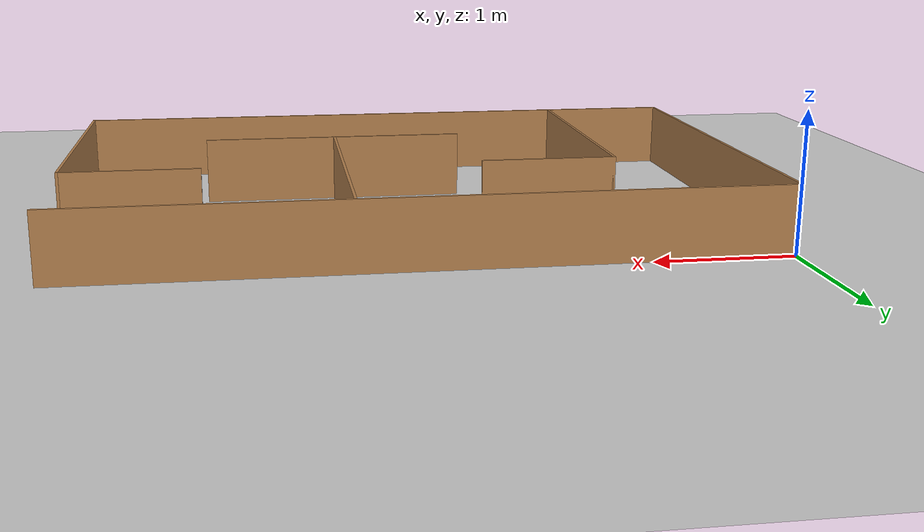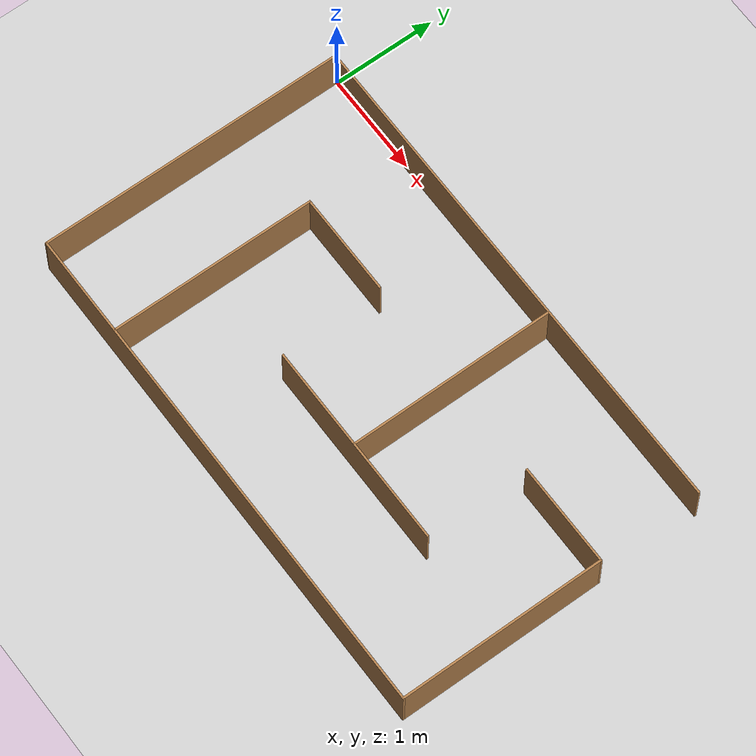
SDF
<sdf version="1.6">
 <world name="default">
  <light name="sun" type="directional">
   <pose>0 0 10 0 -0 0</pose>
   <diffuse>0.8 0.8 0.8 1</diffuse>
   <specular>0.2 0.2 0.2 1</specular>
   <attenuation>
    <range>1000</range>
    <constant>0.9</constant>
    <linear>0.01</linear>
    <quadratic>0.001</quadratic>
   </attenuation>
   <direction>-0.5 0.1 -0.9</direction>
  </light>
  <model name="ground_plane">
   <static>1</static>
   <link name="link">
    <collision name="collision">
     <geometry><plane><normal>0 0 1</normal><size>100 100</size></plane></geometry>
     <surface>
      <contact><collide_bitmask>65535</collide_bitmask></contact>
      <friction><ode><mu>100</mu><mu2>50</mu2></ode></friction>
     </surface>
    </collision>
    <visual name="visual">
     <cast_shadows>0</cast_shadows>
     <geometry><plane><normal>0 0 1</normal><size>100 100</size></plane></geometry>
     <material>
      <script><uri>file://media/materials/scripts/gazebo.material</uri><name>Gazebo/Grey</name></script>
     </material>
    </visual>
   </link>
  </model>
  <gravity>0 0 -9.8</gravity>
  <magnetic_field>6e-06 2.3e-05 -4.2e-05</magnetic_field>
  <atmosphere type="adiabatic"/>
  <physics name="default_physics" default="0" type="ode">
   <max_step_size>0.001</max_step_size>
   <real_time_factor>1</real_time_factor>
   <real_time_update_rate>1000</real_time_update_rate>
  </physics>
  <scene><ambient>0.4 0.4 0.4 1</ambient><background>0.7 0.7 0.7 1</background><shadows>1</shadows></scene>
  <audio><device>default</device></audio>
  <spherical_coordinates>
   <surface_model>EARTH_WGS84</surface_model>
   <latitude_deg>0</latitude_deg>
   <longitude_deg>0</longitude_deg>
   <elevation>0</elevation>
   <heading_deg>0</heading_deg>
  </spherical_coordinates>
  <model name="exp_05">
   <pose>2.48098 -1.50101 0 0 -0 0</pose>
   <link name="Wall_0">
    <collision name="Wall_0_Collision">
     <geometry><box><size>5 0.02 0.5</size></box></geometry>
     <pose>0 0 0.25 0 -0 0</pose>
    </collision>
    <visual name="Wall_0_Visual">
     <pose>0 0 0.25 0 -0 0</pose>
     <geometry><box><size>5 0.02 0.5</size></box></geometry>
     <material>
      <script><uri>file://media/materials/scripts/gazebo.material</uri><name>Gazebo/Wood</name></script>
      <ambient>1 1 1 1</ambient>
     </material>
     <meta><layer>0</layer></meta>
    </visual>
    <pose>-5.7e-05 -1.49 0 0 -0 -9.2e-05</pose>
   </link>
   <link name="Wall_10">
    <collision name="Wall_10_Collision">
     <geometry><box><size>1 0.02 0.5</size></box></geometry>
     <pose>0 0 0.25 0 -0 0</pose>
    </collision>
    <visual name="Wall_10_Visual">
     <pose>0 0 0.25 0 -0 0</pose>
     <geometry><box><size>1 0.02 0.5</size></box></geometry>
     <material>
      <script><uri>file://media/materials/scripts/gazebo.material</uri><name>Gazebo/Wood</name></script>
      <ambient>1 1 1 1</ambient>
     </material>
     <meta><layer>0</layer></meta>
    </visual>
    <pose>-1.01166 0.501118 0 0 -0 0</pose>
   </link>
   <link name="Wall_12">
    <collision name="Wall_12_Collision">
     <geometry><box><size>2 0.02 0.5</size></box></geometry>
     <pose>0 0 0.25 0 -0 0</pose>
    </collision>
    <visual name="Wall_12_Visual">
     <pose>0 0 0.25 0 -0 0</pose>
     <geometry><box><size>2 0.02 0.5</size></box></geometry>
     <material>
      <script><uri>file://media/materials/scripts/gazebo.material</uri><name>Gazebo/Wood</name></script>
      <ambient>1 1 1 1</ambient>
     </material>
     <meta><layer>0</layer></meta>
    </visual>
    <pose>0.492938 0.484925 0 0 -0 -1.5708</pose>
   </link>
   <link name="Wall_14">
    <collision name="Wall_14_Collision">
     <geometry><box><size>2 0.02 0.5</size></box></geometry>
     <pose>0 0 0.25 0 -0 0</pose>
    </collision>
    <visual name="Wall_14_Visual">
     <pose>0 0 0.25 0 -0 0</pose>
     <geometry><box><size>2 0.02 0.5</size></box></geometry>
     <material>
      <script><uri>file://media/materials/scripts/gazebo.material</uri><name>Gazebo/Wood</name></script>
      <ambient>1 1 1 1</ambient>
     </material>
     <meta><layer>0</layer></meta>
    </visual>
    <pose>0.499961 -0.505562 0 0 -0 0</pose>
   </link>
   <link name="Wall_16">
    <collision name="Wall_16_Collision">
     <geometry><box><size>1 0.02 0.5</size></box></geometry>
     <pose>0 0 0.25 0 -0 0</pose>
    </collision>
    <visual name="Wall_16_Visual">
     <pose>0 0 0.25 0 -0 0</pose>
     <geometry><box><size>1 0.02 0.5</size></box></geometry>
     <material>
      <script><uri>file://media/materials/scripts/gazebo.material</uri><name>Gazebo/Wood</name></script>
      <ambient>1 1 1 1</ambient>
     </material>
     <meta><layer>0</layer></meta>
    </visual>
    <pose>1.99983 0.489772 0 0 -0 3.14159</pose>
   </link>
   <link name="Wall_2">
    <collision name="Wall_2_Collision">
     <geometry><box><size>3 0.02 0.5</size></box></geometry>
     <pose>0 0 0.25 0 -0 0</pose>
    </collision>
    <visual name="Wall_2_Visual">
     <pose>0 0 0.25 0 -0 0</pose>
     <geometry><box><size>3 0.02 0.5</size></box></geometry>
     <material>
      <script><uri>file://media/materials/scripts/gazebo.material</uri><name>Gazebo/Wood</name></script>
      <ambient>1 1 1 1</ambient>
     </material>
     <meta><layer>0</layer></meta>
    </visual>
    <pose>-2.48994 0.000229 0 0 -0 1.5708</pose>
   </link>
   <link name="Wall_4">
    <collision name="Wall_4_Collision">
     <geometry><box><size>5 0.02 0.5</size></box></geometry>
     <pose>0 0 0.25 0 -0 0</pose>
    </collision>
    <visual name="Wall_4_Visual">
     <pose>0 0 0.25 0 -0 0</pose>
     <geometry><box><size>5 0.02 0.5</size></box></geometry>
     <material>
      <script><uri>file://media/materials/scripts/gazebo.material</uri><name>Gazebo/Wood</name></script>
      <ambient>1 1 1 1</ambient>
     </material>
     <meta><layer>0</layer></meta>
    </visual>
    <pose>5.7e-05 1.49023 0 0 -0 0</pose>
   </link>
   <link name="Wall_6">
    <collision name="Wall_6_Collision">
     <geometry><box><size>2 0.02 0.5</size></box></geometry>
     <pose>0 0 0.25 0 -0 0</pose>
    </collision>
    <visual name="Wall_6_Visual">
     <pose>0 0 0.25 0 -0 0</pose>
     <geometry><box><size>2 0.02 0.5</size></box></geometry>
     <material>
      <script><uri>file://media/materials/scripts/gazebo.material</uri><name>Gazebo/Wood</name></script>
      <ambient>1 1 1 1</ambient>
     </material>
     <meta><layer>0</layer></meta>
    </visual>
    <pose>2.48983 -0.500228 0 0 -0 1.5708</pose>
   </link>
   <link name="Wall_8">
    <collision name="Wall_8_Collision">
     <geometry><box><size>2 0.02 0.5</size></box></geometry>
     <pose>0 0 0.25 0 -0 0</pose>
    </collision>
    <visual name="Wall_8_Visual">
     <pose>0 0 0.25 0 -0 0</pose>
     <geometry><box><size>2 0.02 0.5</size></box></geometry>
     <material>
      <script><uri>file://media/materials/scripts/gazebo.material</uri><name>Gazebo/Wood</name></script>
      <ambient>1 1 1 1</ambient>
     </material>
     <meta><layer>0</layer></meta>
    </visual>
    <pose>-1.50166 -0.488882 0 0 -0 -1.5708</pose>
   </link>
   <static>1</static>
  </model>
 </world>
</sdf>
